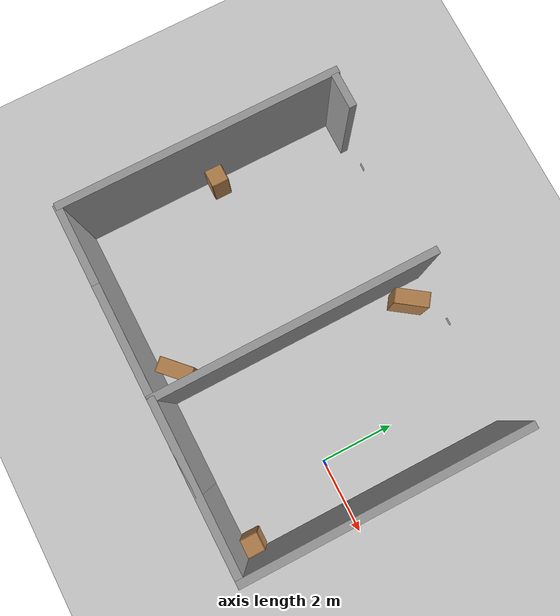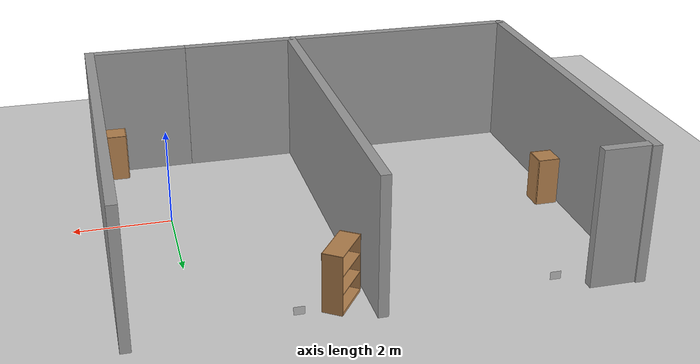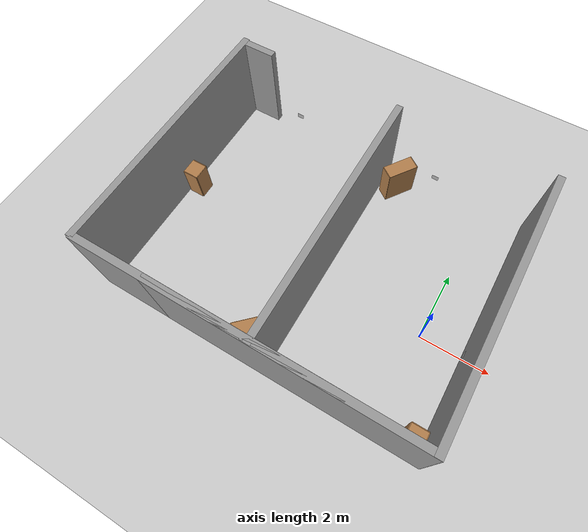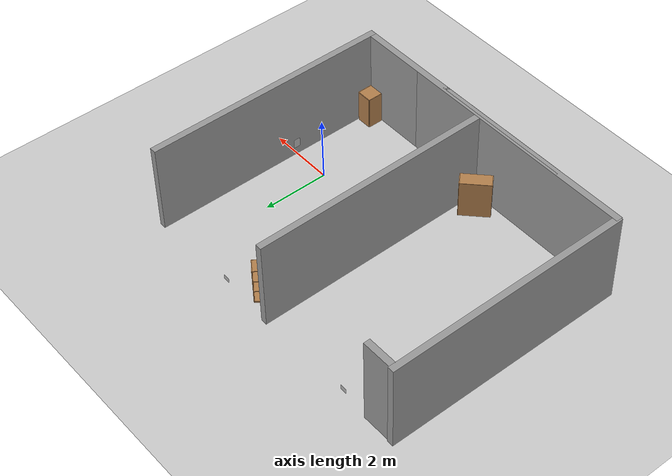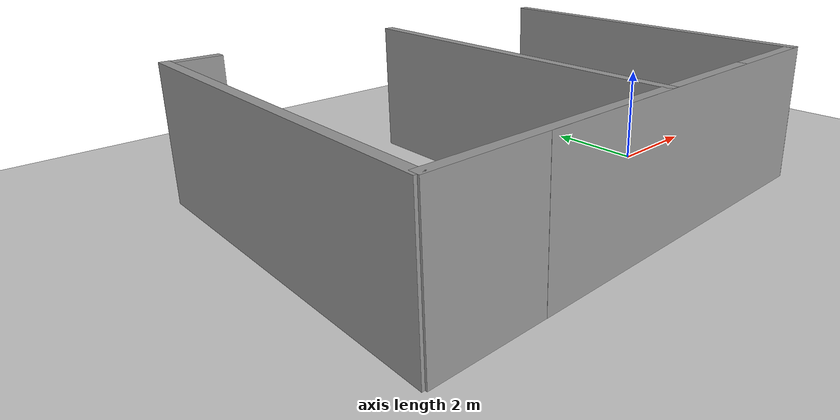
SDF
<sdf version="1.7">
 <world name="default">
  <model name="character">
   <static>1</static>
   <link name="cluedo_character::link">
    <collision name="collision">
     <geometry><plane><normal>0 0 1</normal><size>0.21 0.297</size></plane></geometry>
     <surface><friction><ode><mu>100</mu><mu2>50</mu2></ode></friction></surface>
    </collision>
    <visual name="visual">
     <pose>1.18 0 0.4 1.57 0 -1.57</pose>
     <cast_shadows>0</cast_shadows>
     <geometry><plane><normal>0 0 1</normal><size>0.21 0.297</size></plane></geometry>
     <material>
      <script>
       <uri>model://cluedo_character/materials/scripts</uri>
       <uri>model://cluedo_character/materials/textures</uri>
       <name>Cluedo_character/Image</name>
      </script>
     </material>
    </visual>
    <velocity_decay><linear>0</linear><angular>0</angular></velocity_decay>
   </link>
  </model>
  <model name="ground_plane">
   <static>1</static>
   <link name="link">
    <collision name="collision">
     <geometry><plane><normal>0 0 1</normal><size>100 100</size></plane></geometry>
     <surface><friction><ode><mu>100</mu><mu2>50</mu2></ode></friction></surface>
    </collision>
    <visual name="visual">
     <cast_shadows>0</cast_shadows>
     <geometry><plane><normal>0 0 1</normal><size>100 100</size></plane></geometry>
     <material>
      <script><uri>file://media/materials/scripts/gazebo.material</uri><name>Gazebo/Grey</name></script>
     </material>
    </visual>
    <velocity_decay><linear>0</linear><angular>0</angular></velocity_decay>
   </link>
  </model>
  <model name="grey_wall_0">
   <static>1</static>
   <link name="link">
    <pose>0 0 1.4 0 -0 0</pose>
    <collision name="collision"><geometry><box><size>7.5 0.2 2.8</size></box></geometry></collision>
    <visual name="visual">
     <cast_shadows>0</cast_shadows>
     <geometry><box><size>7.5 0.2 2.8</size></box></geometry>
     <material>
      <script>
       <uri>model://grey_wall/materials/scripts</uri>
       <uri>model://grey_wall/materials/textures</uri>
       <name>vrc/grey_wall</name>
      </script>
     </material>
    </visual>
    <velocity_decay><linear>0</linear><angular>0</angular></velocity_decay>
   </link>
   <pose>-4.53321 -2.83506 0 0 -0 0</pose>
  </model>
  <model name="grey_wall_1">
   <static>1</static>
   <link name="link">
    <pose>0 0 1.4 0 -0 0</pose>
    <collision name="collision"><geometry><box><size>7.5 0.2 2.8</size></box></geometry></collision>
    <visual name="visual">
     <cast_shadows>0</cast_shadows>
     <geometry><box><size>7.5 0.2 2.8</size></box></geometry>
     <material>
      <script>
       <uri>model://grey_wall/materials/scripts</uri>
       <uri>model://grey_wall/materials/textures</uri>
       <name>vrc/grey_wall</name>
      </script>
     </material>
    </visual>
    <velocity_decay><linear>0</linear><angular>0</angular></velocity_decay>
   </link>
   <pose>-8.23248 0.854179 0 0 0 -1.57181</pose>
  </model>
  <model name="grey_wall_2">
   <static>1</static>
   <link name="link">
    <pose>0 0 1.4 0 -0 0</pose>
    <collision name="collision"><geometry><box><size>7.5 0.2 2.8</size></box></geometry></collision>
    <visual name="visual">
     <cast_shadows>0</cast_shadows>
     <geometry><box><size>7.5 0.2 2.8</size></box></geometry>
     <material>
      <script>
       <uri>model://grey_wall/materials/scripts</uri>
       <uri>model://grey_wall/materials/textures</uri>
       <name>vrc/grey_wall</name>
      </script>
     </material>
    </visual>
    <velocity_decay><linear>0</linear><angular>0</angular></velocity_decay>
   </link>
   <pose>-3.20895 0.824081 0 0 -0 1.57557</pose>
  </model>
  <model name="grey_wall_3">
   <static>1</static>
   <link name="link">
    <pose>0 0 1.4 0 -0 0</pose>
    <collision name="collision"><geometry><box><size>7.5 0.2 2.8</size></box></geometry></collision>
    <visual name="visual">
     <cast_shadows>0</cast_shadows>
     <geometry><box><size>7.5 0.2 2.8</size></box></geometry>
     <material>
      <script>
       <uri>model://grey_wall/materials/scripts</uri>
       <uri>model://grey_wall/materials/textures</uri>
       <name>vrc/grey_wall</name>
      </script>
     </material>
    </visual>
    <velocity_decay><linear>0</linear><angular>0</angular></velocity_decay>
   </link>
   <pose>1.28759 0.815408 0.00212 0 0 -1.57102</pose>
  </model>
  <model name="grey_wall_4">
   <static>1</static>
   <link name="link">
    <pose>0 0 1.4 0 -0 0</pose>
    <collision name="collision"><geometry><box><size>7.5 0.2 2.8</size></box></geometry></collision>
    <visual name="visual">
     <cast_shadows>0</cast_shadows>
     <geometry><box><size>7.5 0.2 2.8</size></box></geometry>
     <material>
      <script>
       <uri>model://grey_wall/materials/scripts</uri>
       <uri>model://grey_wall/materials/textures</uri>
       <name>vrc/grey_wall</name>
      </script>
     </material>
    </visual>
    <velocity_decay><linear>0</linear><angular>0</angular></velocity_decay>
   </link>
   <pose>-2.37715 -2.83764 0 0 -0 0</pose>
  </model>
  <model name="cabinet">
   <static>1</static>
   <link name="cabinet_bottom_plate">
    <inertial>
     <pose>0 0 -1 0 -0 0</pose>
     <inertia><ixx>2.05</ixx><ixy>0</ixy><ixz>0</ixz><iyy>2.05</iyy><iyz>0</iyz><izz>2.05</izz></inertia>
     <mass>25</mass>
    </inertial>
    <collision name="cabinet_bottom_plate_geom">
     <pose>0 0 0.01 0 -0 0</pose>
     <geometry><box><size>0.45 0.45 0.02</size></box></geometry>
    </collision>
    <visual name="cabinet_bottom_plate_geom_visual">
     <pose>0 0 0.01 0 -0 0</pose>
     <geometry><box><size>0.45 0.45 0.02</size></box></geometry>
     <material>
      <script><uri>file://media/materials/scripts/gazebo.material</uri><name>Gazebo/Wood</name></script>
     </material>
    </visual>
    <collision name="cabinet_bottom_plate_geom_cabinet_back_plate">
     <pose>0.235 0 0.51 0 -0 0</pose>
     <geometry><box><size>0.02 0.45 1.02</size></box></geometry>
    </collision>
    <visual name="cabinet_bottom_plate_geom_cabinet_back_plate_visual">
     <pose>0.235 0 0.51 0 -0 0</pose>
     <geometry><box><size>0.02 0.45 1.02</size></box></geometry>
     <material>
      <script><uri>file://media/materials/scripts/gazebo.material</uri><name>Gazebo/Wood</name></script>
     </material>
    </visual>
    <collision name="cabinet_bottom_plate_geom_cabinet_left_plate">
     <pose>0 0.235 0.51 0 -0 0</pose>
     <geometry><box><size>0.45 0.02 1.02</size></box></geometry>
    </collision>
    <visual name="cabinet_bottom_plate_geom_cabinet_left_plate_visual">
     <pose>0 0.235 0.51 0 -0 0</pose>
     <geometry><box><size>0.45 0.02 1.02</size></box></geometry>
     <material>
      <script><uri>file://media/materials/scripts/gazebo.material</uri><name>Gazebo/Wood</name></script>
     </material>
    </visual>
    <collision name="cabinet_bottom_plate_geom_cabinet_middle_plate">
     <pose>0 0 0.51 0 -0 0</pose>
     <geometry><box><size>0.45 0.45 0.02</size></box></geometry>
    </collision>
    <visual name="cabinet_bottom_plate_geom_cabinet_middle_plate_visual">
     <pose>0 0 0.51 0 -0 0</pose>
     <geometry><box><size>0.45 0.45 0.02</size></box></geometry>
     <material>
      <script><uri>file://media/materials/scripts/gazebo.material</uri><name>Gazebo/Wood</name></script>
     </material>
    </visual>
    <collision name="cabinet_bottom_plate_geom_cabinet_right_plate">
     <pose>0 -0.235 0.51 0 -0 0</pose>
     <geometry><box><size>0.45 0.02 1.02</size></box></geometry>
    </collision>
    <visual name="cabinet_bottom_plate_geom_cabinet_right_plate_visual">
     <pose>0 -0.235 0.51 0 -0 0</pose>
     <geometry><box><size>0.45 0.02 1.02</size></box></geometry>
     <material>
      <script><uri>file://media/materials/scripts/gazebo.material</uri><name>Gazebo/Wood</name></script>
     </material>
    </visual>
    <collision name="cabinet_bottom_plate_geom_cabinet_top_plate">
     <pose>0 0 1.01 0 -0 0</pose>
     <geometry><box><size>0.45 0.45 0.02</size></box></geometry>
    </collision>
    <visual name="cabinet_bottom_plate_geom_cabinet_top_plate_visual">
     <pose>0 0 1.01 0 -0 0</pose>
     <geometry><box><size>0.45 0.45 0.02</size></box></geometry>
     <material>
      <script><uri>file://media/materials/scripts/gazebo.material</uri><name>Gazebo/Wood</name></script>
     </material>
    </visual>
    <velocity_decay><linear>0</linear><angular>0</angular></velocity_decay>
   </link>
   <pose>0.912804 -2.47692 0.028898 0 -0 1.56926</pose>
  </model>
  <model name="bookshelf">
   <static>1</static>
   <link name="link">
    <inertial><mass>1</mass></inertial>
    <collision name="back">
     <pose>0 0.005 0.6 0 -0 0</pose>
     <geometry><box><size>0.9 0.01 1.2</size></box></geometry>
    </collision>
    <visual name="visual1">
     <pose>0 0.005 0.6 0 -0 0</pose>
     <geometry><box><size>0.9 0.01 1.2</size></box></geometry>
     <material>
      <script><uri>file://media/materials/scripts/gazebo.material</uri><name>Gazebo/Wood</name></script>
     </material>
    </visual>
    <collision name="left_side">
     <pose>0.45 -0.195 0.6 0 -0 0</pose>
     <geometry><box><size>0.02 0.4 1.2</size></box></geometry>
    </collision>
    <visual name="visual2">
     <pose>0.45 -0.195 0.6 0 -0 0</pose>
     <geometry><box><size>0.02 0.4 1.2</size></box></geometry>
     <material>
      <script><uri>file://media/materials/scripts/gazebo.material</uri><name>Gazebo/Wood</name></script>
     </material>
    </visual>
    <collision name="right_side">
     <pose>-0.45 -0.195 0.6 0 -0 0</pose>
     <geometry><box><size>0.02 0.4 1.2</size></box></geometry>
    </collision>
    <visual name="visual3">
     <pose>-0.45 -0.195 0.6 0 -0 0</pose>
     <geometry><box><size>0.02 0.4 1.2</size></box></geometry>
     <material>
      <script><uri>file://media/materials/scripts/gazebo.material</uri><name>Gazebo/Wood</name></script>
     </material>
    </visual>
    <collision name="bottom">
     <pose>0 -0.195 0.03 0 -0 0</pose>
     <geometry><box><size>0.88 0.4 0.06</size></box></geometry>
    </collision>
    <visual name="visual4">
     <pose>0 -0.195 0.03 0 -0 0</pose>
     <geometry><box><size>0.88 0.4 0.06</size></box></geometry>
     <material>
      <script><uri>file://media/materials/scripts/gazebo.material</uri><name>Gazebo/Wood</name></script>
     </material>
    </visual>
    <collision name="top">
     <pose>0 -0.195 1.19 0 -0 0</pose>
     <geometry><box><size>0.88 0.4 0.02</size></box></geometry>
    </collision>
    <visual name="visual5">
     <pose>0 -0.195 1.19 0 -0 0</pose>
     <geometry><box><size>0.88 0.4 0.02</size></box></geometry>
     <material>
      <script><uri>file://media/materials/scripts/gazebo.material</uri><name>Gazebo/Wood</name></script>
     </material>
    </visual>
    <collision name="low_shelf">
     <pose>0 -0.195 0.43 0 -0 0</pose>
     <geometry><box><size>0.88 0.4 0.02</size></box></geometry>
    </collision>
    <visual name="visual6">
     <pose>0 -0.195 0.43 0 -0 0</pose>
     <geometry><box><size>0.88 0.4 0.02</size></box></geometry>
     <material>
      <script><uri>file://media/materials/scripts/gazebo.material</uri><name>Gazebo/Wood</name></script>
     </material>
    </visual>
    <collision name="high_shelf">
     <pose>0 -0.195 0.8 0 -0 0</pose>
     <geometry><box><size>0.88 0.4 0.02</size></box></geometry>
    </collision>
    <visual name="visual7">
     <pose>0 -0.195 0.8 0 -0 0</pose>
     <geometry><box><size>0.88 0.4 0.02</size></box></geometry>
     <material>
      <script><uri>file://media/materials/scripts/gazebo.material</uri><name>Gazebo/Wood</name></script>
     </material>
    </visual>
    <velocity_decay><linear>0</linear><angular>0</angular></velocity_decay>
   </link>
   <pose>-2.47728 3.76602 0 0 0 -2.18701</pose>
  </model>
  <model name="cabinet_0">
   <static>1</static>
   <link name="cabinet_bottom_plate">
    <inertial>
     <pose>0 0 -1 0 -0 0</pose>
     <inertia><ixx>2.05</ixx><ixy>0</ixy><ixz>0</ixz><iyy>2.05</iyy><iyz>0</iyz><izz>2.05</izz></inertia>
     <mass>25</mass>
    </inertial>
    <collision name="cabinet_bottom_plate_geom">
     <pose>0 0 0.01 0 -0 0</pose>
     <geometry><box><size>0.45 0.45 0.02</size></box></geometry>
    </collision>
    <visual name="cabinet_bottom_plate_geom_visual">
     <pose>0 0 0.01 0 -0 0</pose>
     <geometry><box><size>0.45 0.45 0.02</size></box></geometry>
     <material>
      <script><uri>file://media/materials/scripts/gazebo.material</uri><name>Gazebo/Wood</name></script>
     </material>
    </visual>
    <collision name="cabinet_bottom_plate_geom_cabinet_back_plate">
     <pose>0.235 0 0.51 0 -0 0</pose>
     <geometry><box><size>0.02 0.45 1.02</size></box></geometry>
    </collision>
    <visual name="cabinet_bottom_plate_geom_cabinet_back_plate_visual">
     <pose>0.235 0 0.51 0 -0 0</pose>
     <geometry><box><size>0.02 0.45 1.02</size></box></geometry>
     <material>
      <script><uri>file://media/materials/scripts/gazebo.material</uri><name>Gazebo/Wood</name></script>
     </material>
    </visual>
    <collision name="cabinet_bottom_plate_geom_cabinet_left_plate">
     <pose>0 0.235 0.51 0 -0 0</pose>
     <geometry><box><size>0.45 0.02 1.02</size></box></geometry>
    </collision>
    <visual name="cabinet_bottom_plate_geom_cabinet_left_plate_visual">
     <pose>0 0.235 0.51 0 -0 0</pose>
     <geometry><box><size>0.45 0.02 1.02</size></box></geometry>
     <material>
      <script><uri>file://media/materials/scripts/gazebo.material</uri><name>Gazebo/Wood</name></script>
     </material>
    </visual>
    <collision name="cabinet_bottom_plate_geom_cabinet_middle_plate">
     <pose>0 0 0.51 0 -0 0</pose>
     <geometry><box><size>0.45 0.45 0.02</size></box></geometry>
    </collision>
    <visual name="cabinet_bottom_plate_geom_cabinet_middle_plate_visual">
     <pose>0 0 0.51 0 -0 0</pose>
     <geometry><box><size>0.45 0.45 0.02</size></box></geometry>
     <material>
      <script><uri>file://media/materials/scripts/gazebo.material</uri><name>Gazebo/Wood</name></script>
     </material>
    </visual>
    <collision name="cabinet_bottom_plate_geom_cabinet_right_plate">
     <pose>0 -0.235 0.51 0 -0 0</pose>
     <geometry><box><size>0.45 0.02 1.02</size></box></geometry>
    </collision>
    <visual name="cabinet_bottom_plate_geom_cabinet_right_plate_visual">
     <pose>0 -0.235 0.51 0 -0 0</pose>
     <geometry><box><size>0.45 0.02 1.02</size></box></geometry>
     <material>
      <script><uri>file://media/materials/scripts/gazebo.material</uri><name>Gazebo/Wood</name></script>
     </material>
    </visual>
    <collision name="cabinet_bottom_plate_geom_cabinet_top_plate">
     <pose>0 0 1.01 0 -0 0</pose>
     <geometry><box><size>0.45 0.45 0.02</size></box></geometry>
    </collision>
    <visual name="cabinet_bottom_plate_geom_cabinet_top_plate_visual">
     <pose>0 0 1.01 0 -0 0</pose>
     <geometry><box><size>0.45 0.45 0.02</size></box></geometry>
     <material>
      <script><uri>file://media/materials/scripts/gazebo.material</uri><name>Gazebo/Wood</name></script>
     </material>
    </visual>
    <velocity_decay><linear>0</linear><angular>0</angular></velocity_decay>
   </link>
   <pose>-7.86683 0.925523 0 0 -0 0</pose>
  </model>
  <model name="bookshelf_0">
   <static>1</static>
   <link name="link">
    <inertial><mass>1</mass></inertial>
    <collision name="back">
     <pose>0 0.005 0.6 0 -0 0</pose>
     <geometry><box><size>0.9 0.01 1.2</size></box></geometry>
    </collision>
    <visual name="visual1">
     <pose>0 0.005 0.6 0 -0 0</pose>
     <geometry><box><size>0.9 0.01 1.2</size></box></geometry>
     <material>
      <script><uri>file://media/materials/scripts/gazebo.material</uri><name>Gazebo/Wood</name></script>
     </material>
    </visual>
    <collision name="left_side">
     <pose>0.45 -0.195 0.6 0 -0 0</pose>
     <geometry><box><size>0.02 0.4 1.2</size></box></geometry>
    </collision>
    <visual name="visual2">
     <pose>0.45 -0.195 0.6 0 -0 0</pose>
     <geometry><box><size>0.02 0.4 1.2</size></box></geometry>
     <material>
      <script><uri>file://media/materials/scripts/gazebo.material</uri><name>Gazebo/Wood</name></script>
     </material>
    </visual>
    <collision name="right_side">
     <pose>-0.45 -0.195 0.6 0 -0 0</pose>
     <geometry><box><size>0.02 0.4 1.2</size></box></geometry>
    </collision>
    <visual name="visual3">
     <pose>-0.45 -0.195 0.6 0 -0 0</pose>
     <geometry><box><size>0.02 0.4 1.2</size></box></geometry>
     <material>
      <script><uri>file://media/materials/scripts/gazebo.material</uri><name>Gazebo/Wood</name></script>
     </material>
    </visual>
    <collision name="bottom">
     <pose>0 -0.195 0.03 0 -0 0</pose>
     <geometry><box><size>0.88 0.4 0.06</size></box></geometry>
    </collision>
    <visual name="visual4">
     <pose>0 -0.195 0.03 0 -0 0</pose>
     <geometry><box><size>0.88 0.4 0.06</size></box></geometry>
     <material>
      <script><uri>file://media/materials/scripts/gazebo.material</uri><name>Gazebo/Wood</name></script>
     </material>
    </visual>
    <collision name="top">
     <pose>0 -0.195 1.19 0 -0 0</pose>
     <geometry><box><size>0.88 0.4 0.02</size></box></geometry>
    </collision>
    <visual name="visual5">
     <pose>0 -0.195 1.19 0 -0 0</pose>
     <geometry><box><size>0.88 0.4 0.02</size></box></geometry>
     <material>
      <script><uri>file://media/materials/scripts/gazebo.material</uri><name>Gazebo/Wood</name></script>
     </material>
    </visual>
    <collision name="low_shelf">
     <pose>0 -0.195 0.43 0 -0 0</pose>
     <geometry><box><size>0.88 0.4 0.02</size></box></geometry>
    </collision>
    <visual name="visual6">
     <pose>0 -0.195 0.43 0 -0 0</pose>
     <geometry><box><size>0.88 0.4 0.02</size></box></geometry>
     <material>
      <script><uri>file://media/materials/scripts/gazebo.material</uri><name>Gazebo/Wood</name></script>
     </material>
    </visual>
    <collision name="high_shelf">
     <pose>0 -0.195 0.8 0 -0 0</pose>
     <geometry><box><size>0.88 0.4 0.02</size></box></geometry>
    </collision>
    <visual name="visual7">
     <pose>0 -0.195 0.8 0 -0 0</pose>
     <geometry><box><size>0.88 0.4 0.02</size></box></geometry>
     <material>
      <script><uri>file://media/materials/scripts/gazebo.material</uri><name>Gazebo/Wood</name></script>
     </material>
    </visual>
    <velocity_decay><linear>0</linear><angular>0</angular></velocity_decay>
   </link>
   <pose>-3.90366 -2.11997 0 0 -0 0.763607</pose>
  </model>
  <model name="grey_wall_small_3">
   <static>1</static>
   <link name="link">
    <pose>0 0 1.4 0 -0 0</pose>
    <collision name="collision"><geometry><box><size>0.9375 0.2 2.8</size></box></geometry></collision>
    <visual name="visual">
     <cast_shadows>0</cast_shadows>
     <geometry><box><size>0.9375 0.2 2.8</size></box></geometry>
     <material>
      <script>
       <uri>model://grey_wall_small/materials/scripts</uri>
       <uri>model://grey_wall_small/materials/textures</uri>
       <name>vrc/grey_wall_small</name>
      </script>
     </material>
    </visual>
    <velocity_decay><linear>0</linear><angular>0</angular></velocity_decay>
   </link>
   <pose>-7.6898 4.46929 0 0 -0 0</pose>
  </model>
  <model name="red_image">
   <static>1</static>
   <link name="link">
    <collision name="collision">
     <geometry><plane><normal>0 0 1</normal><size>0.21 0.16</size></plane></geometry>
     <surface><friction><ode><mu>100</mu><mu2>50</mu2></ode></friction></surface>
    </collision>
    <visual name="visual">
     <pose>-6.48 4.6 0.4 1.57 0 3.14</pose>
     <cast_shadows>0</cast_shadows>
     <geometry><plane><normal>0 0 1</normal><size>0.21 0.16</size></plane></geometry>
     <material>
      <script>
       <uri>model://red_image/materials/scripts</uri>
       <uri>model://red_image/materials/textures</uri>
       <name>red_image/Image</name>
      </script>
     </material>
    </visual>
    <velocity_decay><linear>0</linear><angular>0</angular></velocity_decay>
   </link>
  </model>
  <model name="green_image">
   <static>1</static>
   <link name="link">
    <collision name="collision">
     <geometry><plane><normal>0 0 1</normal><size>0.21 0.16</size></plane></geometry>
     <surface><friction><ode><mu>100</mu><mu2>50</mu2></ode></friction></surface>
    </collision>
    <visual name="visual">
     <pose>-1.7 4.6 0.4 1.57 0 3.14</pose>
     <cast_shadows>0</cast_shadows>
     <geometry><plane><normal>0 0 1</normal><size>0.21 0.16</size></plane></geometry>
     <material>
      <script>
       <uri>model://green_image/materials/scripts</uri>
       <uri>model://green_image/materials/textures</uri>
       <name>green_image/Image</name>
      </script>
     </material>
    </visual>
    <velocity_decay><linear>0</linear><angular>0</angular></velocity_decay>
   </link>
  </model>
 </world>
</sdf>
